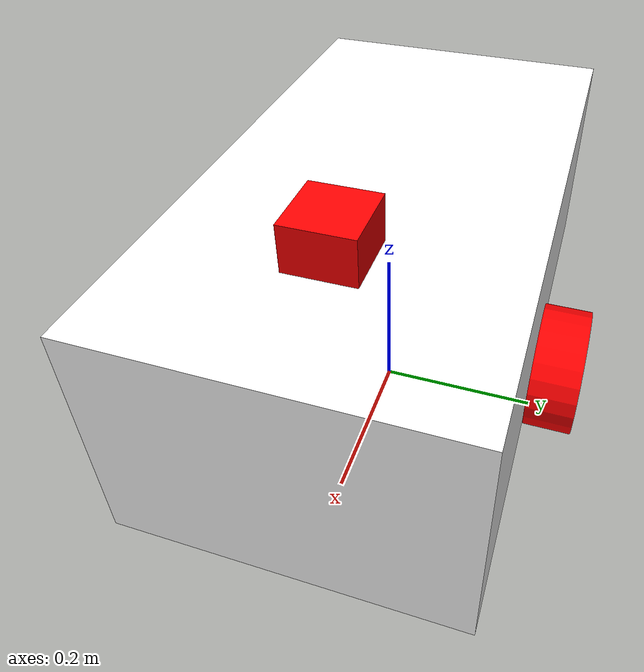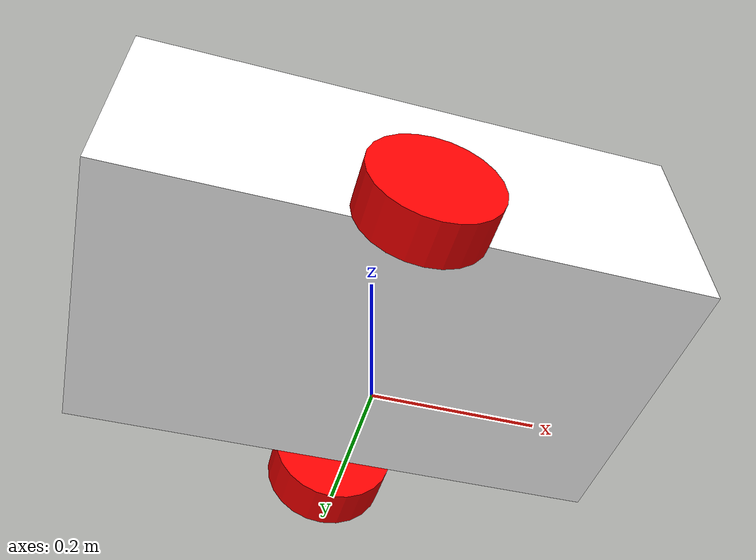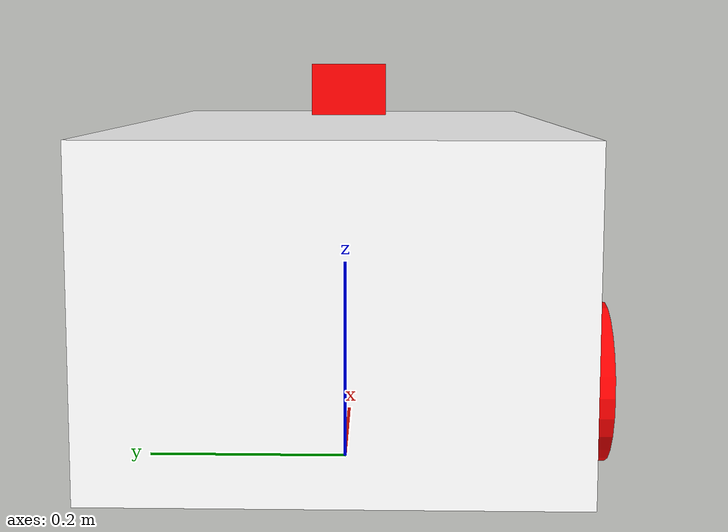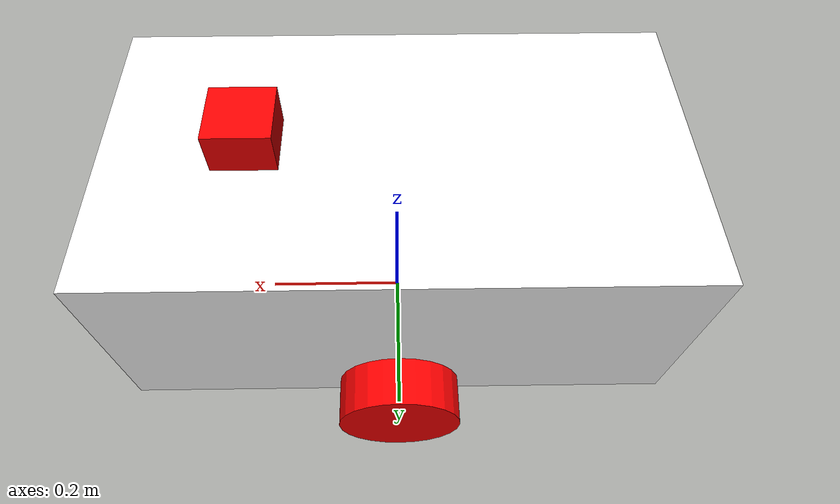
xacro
<?xml version="1.0" ?>
<robot name="autobot" xmlns:xacro="http://ros.org/wiki/xacro">
<xacro:include filename="$(find autobot_simulation)/urdf/bot.gazebo" />

<link name="base_footprint" />

<link name="base_link" >
    <visual>
        <geometry>
          <box size="0.72 0.40 0.28"/>
        </geometry>
        <material name="base_material">
          <color rgba="1 1 1 1"/>
        </material>
      </visual>
      <collision>
        <geometry>
          <box size="0.72 0.40 0.28"/>
        </geometry>
      </collision>
</link>

<link name="left_wheel" >
  <visual>
    <geometry>
      <cylinder length="0.06" radius="0.08"/>
    </geometry>
    <material name="l_wheel">
      <color rgba="1 0 0 1"/>
    </material>
  </visual>
  <collision>
    <geometry>
      <cylinder length="0.06" radius="0.08"/>
    </geometry>
  </collision>
</link>

<link name="right_wheel" >
  <visual>
    <geometry>
      <cylinder length="0.06" radius="0.08"/>
    </geometry>
    <material name="r_wheel">
      <color rgba="1 0 0 1"/>
    </material>
  </visual>
  <collision>
    <geometry>
      <cylinder length="0.06" radius="0.08"/>
    </geometry>
  </collision>
</link>

<link name="laser" >
  <visual>
      <geometry>
        <box size="0.08 0.08 0.055"/>
      </geometry>
      <material name="lidar_mat">
        <color rgba="1 0 0 1"/>
      </material>
    </visual>
    <collision>
      <geometry>
        <box size="0.08 0.08 0.055"/>
      </geometry>
    </collision>
</link>

<joint name="footprint_link_joint" type="fixed" >
    <parent link = "base_footprint"/>
    <child link = "base_link" />
    <origin xyz = "0 0 0.20" rpy = "0 0 3.14" />
</joint>

<joint name="baselink_leftwheel" type="fixed" >
  <parent link = "base_link"/>
  <child link = "left_wheel" />
  <origin xyz = "0 0.23 -0.12" rpy = "1.57 0 0" />
</joint>

<joint name="baselink_rightwheel" type="fixed" >
  <parent link = "base_link"/>
  <child link = "right_wheel" />
  <origin xyz = "0 -0.23 -0.12" rpy = "1.57 0 0" />
</joint>

<joint name="baselink_lidar" type="fixed" >
  <parent link = "base_link"/>
  <child link = "laser" />
  <origin xyz = "-0.18 0 0.17" rpy = "0 0 0" />
</joint>

</robot>
